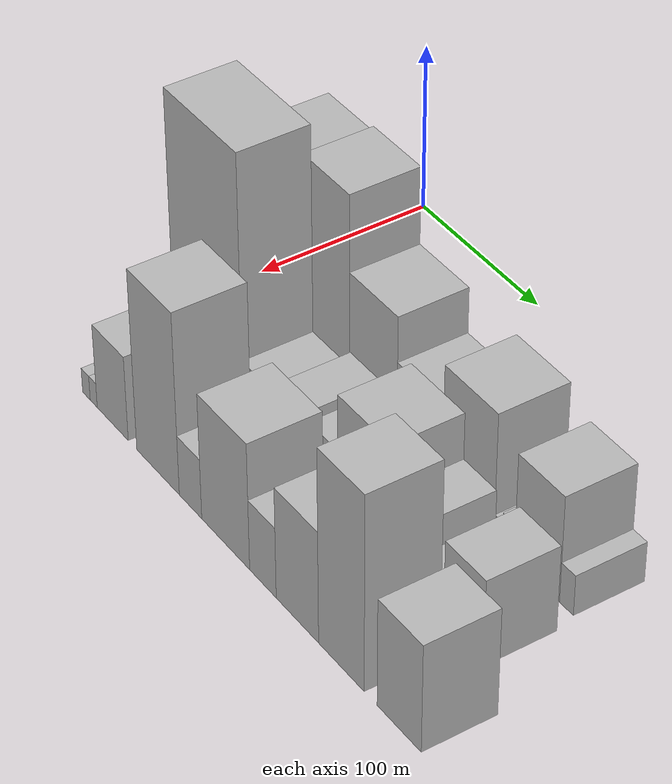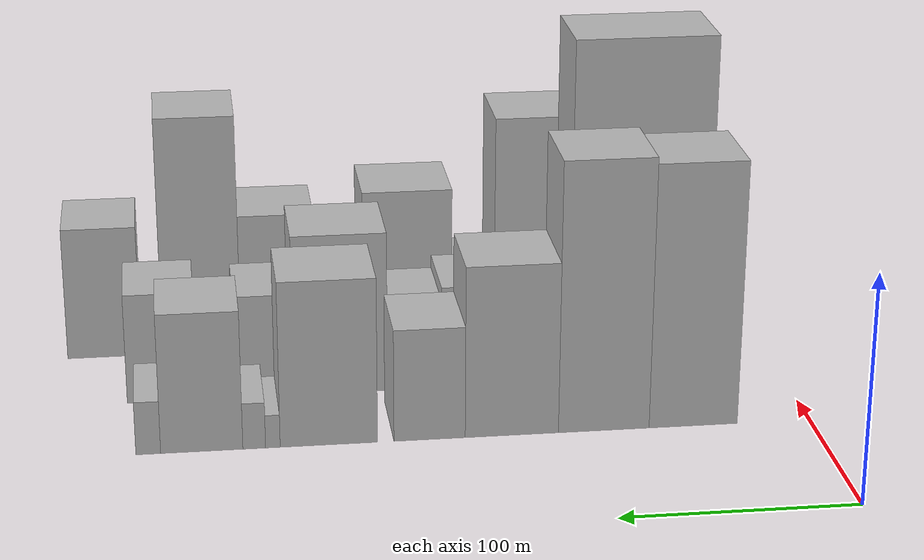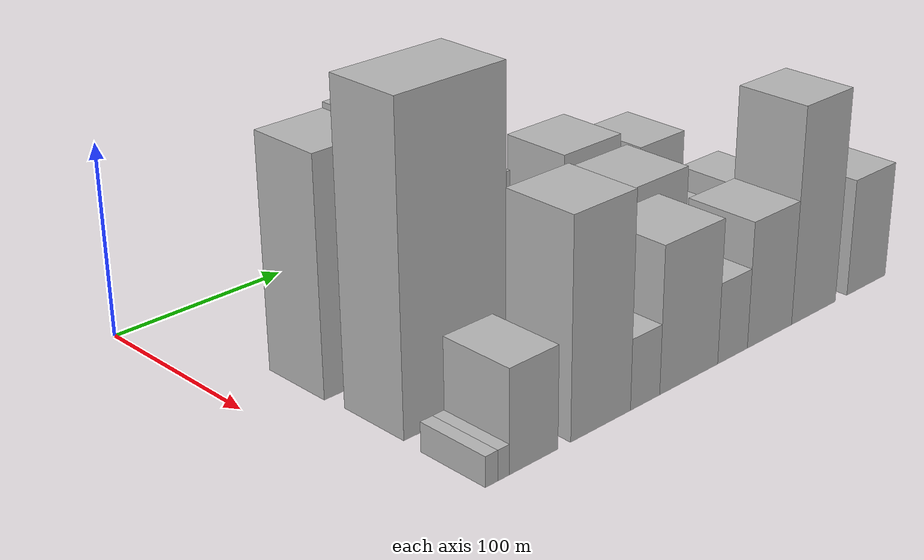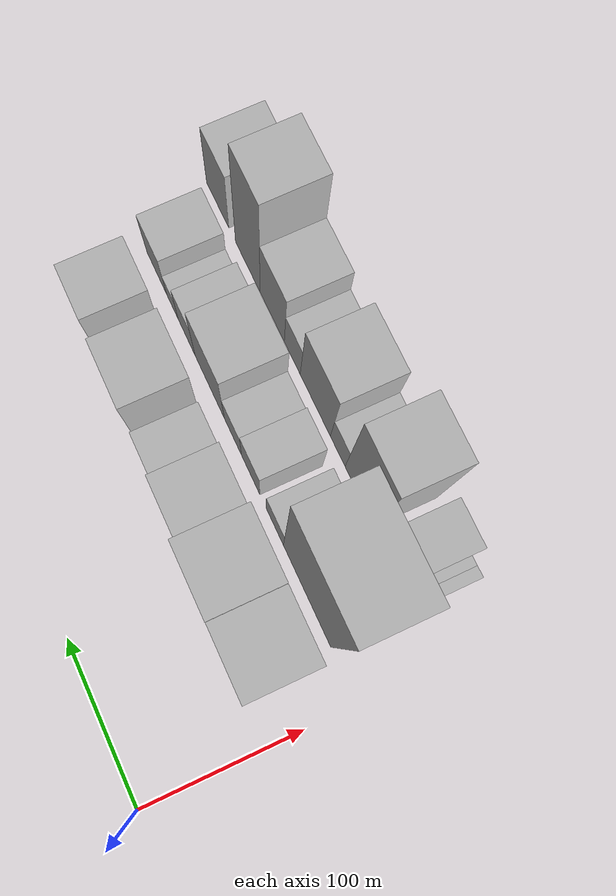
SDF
<sdf version="1.6">
 <world name="default">
  <model name="building_19">
   <static>1</static>
   <pose>100.0000 51.3344 0 0.000000 0.000000 0.000000</pose>
   <link name="link">
    <pose>0 0 60.00 0 0 0</pose>
    <collision name="collision"><geometry><box><size>40.0000 38.7485 120.0000</size></box></geometry></collision>
    <visual name="visual">
     <cast_shadows>0</cast_shadows>
     <geometry><box><size>40.0000 38.7485 120.0000</size></box></geometry>
     <material>
      <script>
       <uri>model://HANNAS_wall/materials/scripts</uri>
       <uri>model://HANNAS_wall/materials/textures</uri>
       <name>vrc/HANNAS_wall</name>
      </script>
     </material>
    </visual>
   </link>
  </model>
  <model name="building_20">
   <static>1</static>
   <pose>100.0000 90.4751 0 0.000000 0.000000 0.000000</pose>
   <link name="link">
    <pose>0 0 61.50 0 0 0</pose>
    <collision name="collision"><geometry><box><size>40.0000 39.5329 123.0000</size></box></geometry></collision>
    <visual name="visual">
     <cast_shadows>0</cast_shadows>
     <geometry><box><size>40.0000 39.5329 123.0000</size></box></geometry>
     <material>
      <script>
       <uri>model://HANNAS_wall/materials/scripts</uri>
       <uri>model://HANNAS_wall/materials/textures</uri>
       <name>vrc/HANNAS_wall</name>
      </script>
     </material>
    </visual>
   </link>
  </model>
  <model name="building_21">
   <static>1</static>
   <pose>100.0000 130.3828 0 0.000000 0.000000 0.000000</pose>
   <link name="link">
    <pose>0 0 39.00 0 0 0</pose>
    <collision name="collision"><geometry><box><size>40.0000 40.2824 78.0000</size></box></geometry></collision>
    <visual name="visual">
     <cast_shadows>0</cast_shadows>
     <geometry><box><size>40.0000 40.2824 78.0000</size></box></geometry>
     <material>
      <script>
       <uri>model://HANNAS_wall/materials/scripts</uri>
       <uri>model://HANNAS_wall/materials/textures</uri>
       <name>vrc/HANNAS_wall</name>
      </script>
     </material>
    </visual>
   </link>
  </model>
  <model name="building_22">
   <static>1</static>
   <pose>100.0000 165.8007 0 0.000000 0.000000 0.000000</pose>
   <link name="link">
    <pose>0 0 25.50 0 0 0</pose>
    <collision name="collision"><geometry><box><size>40.0000 30.5533 51.0000</size></box></geometry></collision>
    <visual name="visual">
     <cast_shadows>0</cast_shadows>
     <geometry><box><size>40.0000 30.5533 51.0000</size></box></geometry>
     <material>
      <script>
       <uri>model://HANNAS_wall/materials/scripts</uri>
       <uri>model://HANNAS_wall/materials/textures</uri>
       <name>vrc/HANNAS_wall</name>
      </script>
     </material>
    </visual>
   </link>
  </model>
  <model name="building_23">
   <static>1</static>
   <pose>100.0000 208.7580 0 0.000000 0.000000 0.000000</pose>
   <link name="link">
    <pose>0 0 37.50 0 0 0</pose>
    <collision name="collision"><geometry><box><size>40.0000 41.3613 75.0000</size></box></geometry></collision>
    <visual name="visual">
     <cast_shadows>0</cast_shadows>
     <geometry><box><size>40.0000 41.3613 75.0000</size></box></geometry>
     <material>
      <script>
       <uri>model://HANNAS_wall/materials/scripts</uri>
       <uri>model://HANNAS_wall/materials/textures</uri>
       <name>vrc/HANNAS_wall</name>
      </script>
     </material>
    </visual>
   </link>
  </model>
  <model name="building_24">
   <static>1</static>
   <pose>100.0000 232.5239 0 0.000000 0.000000 0.000000</pose>
   <link name="link">
    <pose>0 0 7.50 0 0 0</pose>
    <collision name="collision"><geometry><box><size>40.0000 6.1706 15.0000</size></box></geometry></collision>
    <visual name="visual">
     <cast_shadows>0</cast_shadows>
     <geometry><box><size>40.0000 6.1706 15.0000</size></box></geometry>
     <material>
      <script>
       <uri>model://HANNAS_wall/materials/scripts</uri>
       <uri>model://HANNAS_wall/materials/textures</uri>
       <name>vrc/HANNAS_wall</name>
      </script>
     </material>
    </visual>
   </link>
  </model>
  <model name="building_25">
   <static>1</static>
   <pose>100.0000 240.3950 0 0.000000 0.000000 0.000000</pose>
   <link name="link">
    <pose>0 0 10.50 0 0 0</pose>
    <collision name="collision"><geometry><box><size>40.0000 9.5717 21.0000</size></box></geometry></collision>
    <visual name="visual">
     <cast_shadows>0</cast_shadows>
     <geometry><box><size>40.0000 9.5717 21.0000</size></box></geometry>
     <material>
      <script>
       <uri>model://HANNAS_wall/materials/scripts</uri>
       <uri>model://HANNAS_wall/materials/textures</uri>
       <name>vrc/HANNAS_wall</name>
      </script>
     </material>
    </visual>
   </link>
  </model>
  <model name="building_26">
   <static>1</static>
   <pose>100.0000 262.4223 0 0.000000 0.000000 0.000000</pose>
   <link name="link">
    <pose>0 0 31.50 0 0 0</pose>
    <collision name="collision"><geometry><box><size>40.0000 34.4828 63.0000</size></box></geometry></collision>
    <visual name="visual">
     <cast_shadows>0</cast_shadows>
     <geometry><box><size>40.0000 34.4828 63.0000</size></box></geometry>
     <material>
      <script>
       <uri>model://HANNAS_wall/materials/scripts</uri>
       <uri>model://HANNAS_wall/materials/textures</uri>
       <name>vrc/HANNAS_wall</name>
      </script>
     </material>
    </visual>
   </link>
  </model>
  <model name="building_27">
   <static>1</static>
   <pose>100.0000 284.8369 0 0.000000 0.000000 0.000000</pose>
   <link name="link">
    <pose>0 0 12.00 0 0 0</pose>
    <collision name="collision"><geometry><box><size>40.0000 10.3464 24.0000</size></box></geometry></collision>
    <visual name="visual">
     <cast_shadows>0</cast_shadows>
     <geometry><box><size>40.0000 10.3464 24.0000</size></box></geometry>
     <material>
      <script>
       <uri>model://HANNAS_wall/materials/scripts</uri>
       <uri>model://HANNAS_wall/materials/textures</uri>
       <name>vrc/HANNAS_wall</name>
      </script>
     </material>
    </visual>
   </link>
  </model>
  <model name="building_55">
   <static>1</static>
   <pose>152.0000 65.2520 0 0.000000 0.000000 0.000000</pose>
   <link name="link">
    <pose>0 0 79.50 0 0 0</pose>
    <collision name="collision"><geometry><box><size>40.0000 62.8517 159.0000</size></box></geometry></collision>
    <visual name="visual">
     <cast_shadows>0</cast_shadows>
     <geometry><box><size>40.0000 62.8517 159.0000</size></box></geometry>
     <material>
      <script>
       <uri>model://HANNAS_wall/materials/scripts</uri>
       <uri>model://HANNAS_wall/materials/textures</uri>
       <name>vrc/HANNAS_wall</name>
      </script>
     </material>
    </visual>
   </link>
  </model>
  <model name="building_56">
   <static>1</static>
   <pose>152.0000 108.2803 0 0.000000 0.000000 0.000000</pose>
   <link name="link">
    <pose>0 0 19.50 0 0 0</pose>
    <collision name="collision"><geometry><box><size>40.0000 23.2048 39.0000</size></box></geometry></collision>
    <visual name="visual">
     <cast_shadows>0</cast_shadows>
     <geometry><box><size>40.0000 23.2048 39.0000</size></box></geometry>
     <material>
      <script>
       <uri>model://HANNAS_wall/materials/scripts</uri>
       <uri>model://HANNAS_wall/materials/textures</uri>
       <name>vrc/HANNAS_wall</name>
      </script>
     </material>
    </visual>
   </link>
  </model>
  <model name="building_57">
   <static>1</static>
   <pose>152.0000 141.6102 0 0.000000 0.000000 0.000000</pose>
   <link name="link">
    <pose>0 0 24.00 0 0 0</pose>
    <collision name="collision"><geometry><box><size>40.0000 25.4550 48.0000</size></box></geometry></collision>
    <visual name="visual">
     <cast_shadows>0</cast_shadows>
     <geometry><box><size>40.0000 25.4550 48.0000</size></box></geometry>
     <material>
      <script>
       <uri>model://HANNAS_wall/materials/scripts</uri>
       <uri>model://HANNAS_wall/materials/textures</uri>
       <name>vrc/HANNAS_wall</name>
      </script>
     </material>
    </visual>
   </link>
  </model>
  <model name="building_58">
   <static>1</static>
   <pose>152.0000 166.4611 0 0.000000 0.000000 0.000000</pose>
   <link name="link">
    <pose>0 0 21.00 0 0 0</pose>
    <collision name="collision"><geometry><box><size>40.0000 24.2469 42.0000</size></box></geometry></collision>
    <visual name="visual">
     <cast_shadows>0</cast_shadows>
     <geometry><box><size>40.0000 24.2469 42.0000</size></box></geometry>
     <material>
      <script>
       <uri>model://HANNAS_wall/materials/scripts</uri>
       <uri>model://HANNAS_wall/materials/textures</uri>
       <name>vrc/HANNAS_wall</name>
      </script>
     </material>
    </visual>
   </link>
  </model>
  <model name="building_59">
   <static>1</static>
   <pose>152.0000 199.6101 0 0.000000 0.000000 0.000000</pose>
   <link name="link">
    <pose>0 0 37.50 0 0 0</pose>
    <collision name="collision"><geometry><box><size>40.0000 42.0511 75.0000</size></box></geometry></collision>
    <visual name="visual">
     <cast_shadows>0</cast_shadows>
     <geometry><box><size>40.0000 42.0511 75.0000</size></box></geometry>
     <material>
      <script>
       <uri>model://HANNAS_wall/materials/scripts</uri>
       <uri>model://HANNAS_wall/materials/textures</uri>
       <name>vrc/HANNAS_wall</name>
      </script>
     </material>
    </visual>
   </link>
  </model>
  <model name="building_60">
   <static>1</static>
   <pose>152.0000 233.3329 0 0.000000 0.000000 0.000000</pose>
   <link name="link">
    <pose>0 0 24.00 0 0 0</pose>
    <collision name="collision"><geometry><box><size>40.0000 25.3945 48.0000</size></box></geometry></collision>
    <visual name="visual">
     <cast_shadows>0</cast_shadows>
     <geometry><box><size>40.0000 25.3945 48.0000</size></box></geometry>
     <material>
      <script>
       <uri>model://HANNAS_wall/materials/scripts</uri>
       <uri>model://HANNAS_wall/materials/textures</uri>
       <name>vrc/HANNAS_wall</name>
      </script>
     </material>
    </visual>
   </link>
  </model>
  <model name="building_61">
   <static>1</static>
   <pose>152.0000 254.6546 0 0.000000 0.000000 0.000000</pose>
   <link name="link">
    <pose>0 0 15.00 0 0 0</pose>
    <collision name="collision"><geometry><box><size>40.0000 17.2487 30.0000</size></box></geometry></collision>
    <visual name="visual">
     <cast_shadows>0</cast_shadows>
     <geometry><box><size>40.0000 17.2487 30.0000</size></box></geometry>
     <material>
      <script>
       <uri>model://HANNAS_wall/materials/scripts</uri>
       <uri>model://HANNAS_wall/materials/textures</uri>
       <name>vrc/HANNAS_wall</name>
      </script>
     </material>
    </visual>
   </link>
  </model>
  <model name="building_62">
   <static>1</static>
   <pose>152.0000 278.5262 0 0.000000 0.000000 0.000000</pose>
   <link name="link">
    <pose>0 0 25.50 0 0 0</pose>
    <collision name="collision"><geometry><box><size>40.0000 30.4945 51.0000</size></box></geometry></collision>
    <visual name="visual">
     <cast_shadows>0</cast_shadows>
     <geometry><box><size>40.0000 30.4945 51.0000</size></box></geometry>
     <material>
      <script>
       <uri>model://HANNAS_wall/materials/scripts</uri>
       <uri>model://HANNAS_wall/materials/textures</uri>
       <name>vrc/HANNAS_wall</name>
      </script>
     </material>
    </visual>
   </link>
  </model>
  <model name="building_90">
   <static>1</static>
   <pose>204.0000 36.5670 0 0.000000 0.000000 0.000000</pose>
   <link name="link">
    <pose>0 0 7.50 0 0 0</pose>
    <collision name="collision"><geometry><box><size>40.0000 7.2923 15.0000</size></box></geometry></collision>
    <visual name="visual">
     <cast_shadows>0</cast_shadows>
     <geometry><box><size>40.0000 7.2923 15.0000</size></box></geometry>
     <material>
      <script>
       <uri>model://HANNAS_wall/materials/scripts</uri>
       <uri>model://HANNAS_wall/materials/textures</uri>
       <name>vrc/HANNAS_wall</name>
      </script>
     </material>
    </visual>
   </link>
  </model>
  <model name="building_91">
   <static>1</static>
   <pose>204.0000 43.5936 0 0.000000 0.000000 0.000000</pose>
   <link name="link">
    <pose>0 0 7.50 0 0 0</pose>
    <collision name="collision"><geometry><box><size>40.0000 6.7609 15.0000</size></box></geometry></collision>
    <visual name="visual">
     <cast_shadows>0</cast_shadows>
     <geometry><box><size>40.0000 6.7609 15.0000</size></box></geometry>
     <material>
      <script>
       <uri>model://HANNAS_wall/materials/scripts</uri>
       <uri>model://HANNAS_wall/materials/textures</uri>
       <name>vrc/HANNAS_wall</name>
      </script>
     </material>
    </visual>
   </link>
  </model>
  <model name="building_92">
   <static>1</static>
   <pose>204.0000 61.6612 0 0.000000 0.000000 0.000000</pose>
   <link name="link">
    <pose>0 0 25.50 0 0 0</pose>
    <collision name="collision"><geometry><box><size>40.0000 29.3743 51.0000</size></box></geometry></collision>
    <visual name="visual">
     <cast_shadows>0</cast_shadows>
     <geometry><box><size>40.0000 29.3743 51.0000</size></box></geometry>
     <material>
      <script>
       <uri>model://HANNAS_wall/materials/scripts</uri>
       <uri>model://HANNAS_wall/materials/textures</uri>
       <name>vrc/HANNAS_wall</name>
      </script>
     </material>
    </visual>
   </link>
  </model>
  <model name="building_93">
   <static>1</static>
   <pose>204.0000 103.7845 0 0.000000 0.000000 0.000000</pose>
   <link name="link">
    <pose>0 0 54.00 0 0 0</pose>
    <collision name="collision"><geometry><box><size>40.0000 38.8723 108.0000</size></box></geometry></collision>
    <visual name="visual">
     <cast_shadows>0</cast_shadows>
     <geometry><box><size>40.0000 38.8723 108.0000</size></box></geometry>
     <material>
      <script>
       <uri>model://HANNAS_wall/materials/scripts</uri>
       <uri>model://HANNAS_wall/materials/textures</uri>
       <name>vrc/HANNAS_wall</name>
      </script>
     </material>
    </visual>
   </link>
  </model>
  <model name="building_94">
   <static>1</static>
   <pose>204.0000 133.1850 0 0.000000 0.000000 0.000000</pose>
   <link name="link">
    <pose>0 0 18.00 0 0 0</pose>
    <collision name="collision"><geometry><box><size>40.0000 19.9288 36.0000</size></box></geometry></collision>
    <visual name="visual">
     <cast_shadows>0</cast_shadows>
     <geometry><box><size>40.0000 19.9288 36.0000</size></box></geometry>
     <material>
      <script>
       <uri>model://HANNAS_wall/materials/scripts</uri>
       <uri>model://HANNAS_wall/materials/textures</uri>
       <name>vrc/HANNAS_wall</name>
      </script>
     </material>
    </visual>
   </link>
  </model>
  <model name="building_95">
   <static>1</static>
   <pose>204.0000 163.8841 0 0.000000 0.000000 0.000000</pose>
   <link name="link">
    <pose>0 0 37.50 0 0 0</pose>
    <collision name="collision"><geometry><box><size>40.0000 41.4694 75.0000</size></box></geometry></collision>
    <visual name="visual">
     <cast_shadows>0</cast_shadows>
     <geometry><box><size>40.0000 41.4694 75.0000</size></box></geometry>
     <material>
      <script>
       <uri>model://HANNAS_wall/materials/scripts</uri>
       <uri>model://HANNAS_wall/materials/textures</uri>
       <name>vrc/HANNAS_wall</name>
      </script>
     </material>
    </visual>
   </link>
  </model>
  <model name="building_96">
   <static>1</static>
   <pose>204.0000 195.7783 0 0.000000 0.000000 0.000000</pose>
   <link name="link">
    <pose>0 0 21.00 0 0 0</pose>
    <collision name="collision"><geometry><box><size>40.0000 22.3190 42.0000</size></box></geometry></collision>
    <visual name="visual">
     <cast_shadows>0</cast_shadows>
     <geometry><box><size>40.0000 22.3190 42.0000</size></box></geometry>
     <material>
      <script>
       <uri>model://HANNAS_wall/materials/scripts</uri>
       <uri>model://HANNAS_wall/materials/textures</uri>
       <name>vrc/HANNAS_wall</name>
      </script>
     </material>
    </visual>
   </link>
  </model>
  <model name="building_97">
   <static>1</static>
   <pose>204.0000 224.2615 0 0.000000 0.000000 0.000000</pose>
   <link name="link">
    <pose>0 0 33.00 0 0 0</pose>
    <collision name="collision"><geometry><box><size>40.0000 34.6474 66.0000</size></box></geometry></collision>
    <visual name="visual">
     <cast_shadows>0</cast_shadows>
     <geometry><box><size>40.0000 34.6474 66.0000</size></box></geometry>
     <material>
      <script>
       <uri>model://HANNAS_wall/materials/scripts</uri>
       <uri>model://HANNAS_wall/materials/textures</uri>
       <name>vrc/HANNAS_wall</name>
      </script>
     </material>
    </visual>
   </link>
  </model>
  <model name="building_98">
   <static>1</static>
   <pose>204.0000 259.6360 0 0.000000 0.000000 0.000000</pose>
   <link name="link">
    <pose>0 0 57.00 0 0 0</pose>
    <collision name="collision"><geometry><box><size>40.0000 36.1017 114.0000</size></box></geometry></collision>
    <visual name="visual">
     <cast_shadows>0</cast_shadows>
     <geometry><box><size>40.0000 36.1017 114.0000</size></box></geometry>
     <material>
      <script>
       <uri>model://HANNAS_wall/materials/scripts</uri>
       <uri>model://HANNAS_wall/materials/textures</uri>
       <name>vrc/HANNAS_wall</name>
      </script>
     </material>
    </visual>
   </link>
  </model>
  <model name="building_99">
   <static>1</static>
   <pose>204.0000 304.4165 0 0.000000 0.000000 0.000000</pose>
   <link name="link">
    <pose>0 0 31.50 0 0 0</pose>
    <collision name="collision"><geometry><box><size>40.0000 33.4593 63.0000</size></box></geometry></collision>
    <visual name="visual">
     <cast_shadows>0</cast_shadows>
     <geometry><box><size>40.0000 33.4593 63.0000</size></box></geometry>
     <material>
      <script>
       <uri>model://HANNAS_wall/materials/scripts</uri>
       <uri>model://HANNAS_wall/materials/textures</uri>
       <name>vrc/HANNAS_wall</name>
      </script>
     </material>
    </visual>
   </link>
  </model>
 </world>
</sdf>
